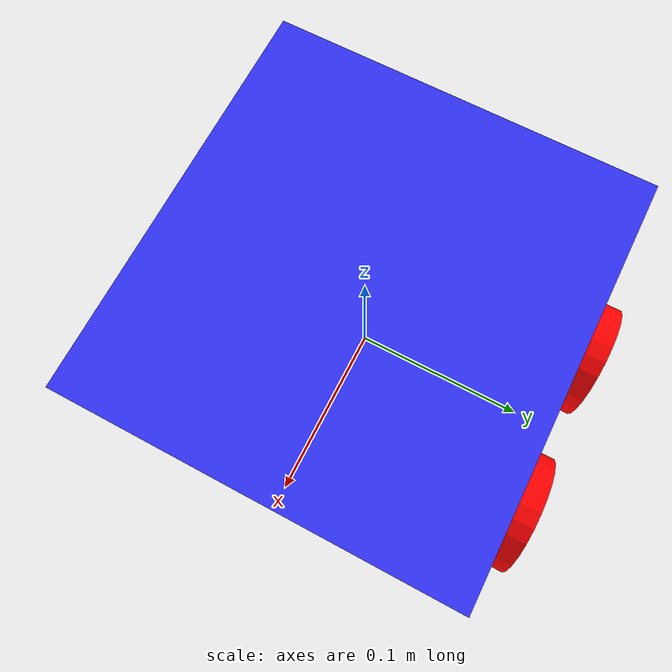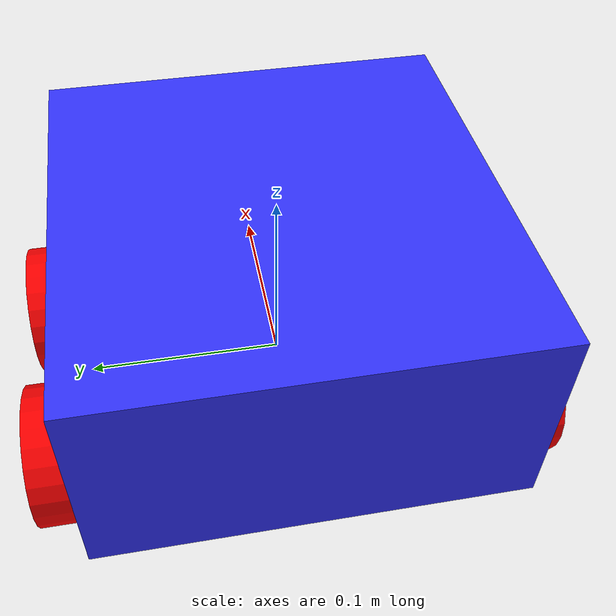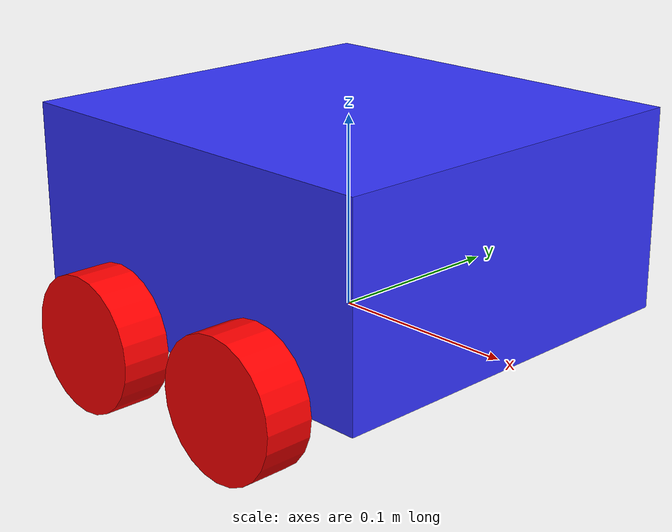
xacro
<?xml version="1.0"?>
<robot xmlns:xacro="http://www.ros.org/wiki/xacro">
<xacro:include filename="inertial_macros.xacro" />

    <material name="white">
        <color rgba="1 1 1 1"/>
    </material>

    <material name="orange">
        <color rgba="1 0.3 0.1 1"/>
    </material>

    <material name="blue">
        <color rgba="0.2 0.2 1 1"/>
    </material>

    <material name="black">
        <color rgba="0 0 0 1"/>
    </material>

    <material name="red">
        <color rgba="1 0 0 1"/>
    </material>

    <material name="purple">
        <color rgba="0.5 0.0 0.5 1.0"/>
    </material>

    <link name="base_link">
    </link>

  <!-- ROBOT FOOTPRINT -->
  <link name="base_footprint"/>

  <joint name="base_joint" type="fixed">
    <parent link="base_link"/>
    <child link="base_footprint"/>
    <origin xyz="0.0 0.0 -0.035" rpy="0 0 0"/>
  </joint>

    <!-- CHASSIS -->
    <joint name="chassis_joint" type="fixed">
        <parent link="base_link"/>
        <child link="chassis"/>
        <origin xyz="0 0 0.0525"/>
    </joint>

    <link name="chassis">
        <visual>
            <origin xyz="0.0 0.0 0.0" rpy="0 0 0"/>
            <geometry>
                <box size="0.220 0.210 0.105"/>
            </geometry>
            <material name="blue"/>
        </visual>
        <collision>
            <origin xyz="0.0 0 0.0" rpy="0 0 0"/>
            <geometry>
                <box size="0.220 0.210 0.105"/>
            </geometry>
        </collision>
        <xacro:inertial_box mass="0.5" x="0.220" y="0.210" z="0.105">
            <origin xyz="0.0 0 0.0" rpy="0 0 0"/>
        </xacro:inertial_box>
    </link>

    <gazebo reference="chassis">
        <material>Gazebo/Blue</material>
    </gazebo>

    <!-- LEFT REAR WHEEL -->
    <joint name="left_rear_wheel_joint" type="continuous">
        <parent link="base_link"/>
        <child link="left_rear_wheel"/>
        <origin xyz="-0.05 0.1175 0.0" rpy="-${pi/2} 0 0"/>
        <axis xyz="0 0 1"/>
    </joint>

    <link name="left_rear_wheel">
        <visual>
            <geometry>
                <cylinder length="0.025" radius="0.035" />
            </geometry>
            <material name="red"/>
        </visual>
        <collision>
            <geometry>
                <sphere radius="0.035" />
            </geometry>
            <material name="red"/>
        </collision>
        <xacro:inertial_sphere mass="0.1" radius="0.035">
            <origin xyz="0 0 0" rpy="0 0 0"/>
        </xacro:inertial_sphere>
    </link>

    <gazebo reference="left_rear_wheel">
        <material>Gazebo/Red</material>
        <mu2 value="0.2"/>
        <mu1 value="0.2"/>
    </gazebo>

    <!-- LEFT FRONT WHEEL -->
    <joint name="left_front_wheel_joint" type="continuous">
        <parent link="base_link"/>
        <child link="left_front_wheel"/>
        <origin xyz="0.05 0.1175 0.0" rpy="-${pi/2} 0 0"/>
        <axis xyz="0 0 1"/>
    </joint>

    <link name="left_front_wheel">
        <visual>
            <geometry>
                <cylinder length="0.025" radius="0.035" />
            </geometry>
            <material name="red"/>
        </visual>
        <collision>
            <geometry>
                <sphere radius="0.035" />
            </geometry>
            <material name="red"/>
        </collision>
        <xacro:inertial_sphere mass="0.1" radius="0.035">
            <origin xyz="0 0 0" rpy="0 0 0"/>
        </xacro:inertial_sphere>
    </link>

    <gazebo reference="left_front_wheel">
        <material>Gazebo/Red</material>
        <mu1 value="0.2"/>
        <mu2 value="0.2"/>
    </gazebo>

    <!-- RIGHT REAR WHEEL -->
    <joint name="right_rear_wheel_joint" type="continuous">
        <parent link="base_link"/>
        <child link="right_rear_wheel"/>
        <origin xyz="-0.05 -0.1175 0.0" rpy="${pi/2} 0 0"/>
        <axis xyz="0 0 -1"/>
    </joint>

    <link name="right_rear_wheel">
        <visual>
            <geometry>
                <cylinder length="0.025" radius="0.035" />
            </geometry>
            <material name="red"/>
        </visual>
        <collision>
            <geometry>
                <sphere radius="0.035" />
            </geometry>
            <material name="red"/>
        </collision>
        <xacro:inertial_sphere mass="0.1" radius="0.035">
            <origin xyz="0 0 0" rpy="0 0 0"/>
        </xacro:inertial_sphere>
    </link>

    <gazebo reference="right_rear_wheel">
        <material>Gazebo/Red</material>
        <mu1 value="0.2"/>
        <mu2 value="0.2"/>
    </gazebo>

    <!-- RIGHT FRONT WHEEL -->
    <joint name="right_front_wheel_joint" type="continuous">
        <parent link="base_link"/>
        <child link="right_front_wheel"/>
        <origin xyz="0.05 -0.1175 0.0" rpy="${pi/2} 0 0"/>
        <axis xyz="0 0 -1"/>
    </joint>

    <link name="right_front_wheel">
        <visual>
            <geometry>
                <cylinder length="0.025" radius="0.035" />
            </geometry>
            <material name="red"/>
        </visual>
        <collision>
            <geometry>
                <sphere radius="0.035" />
            </geometry>
            <material name="red"/>
        </collision>
        <xacro:inertial_sphere mass="0.1" radius="0.035">
            <origin xyz="0 0 0" rpy="0 0 0"/>
        </xacro:inertial_sphere>
    </link>

    <gazebo reference="right_front_wheel">
        <material>Gazebo/Red</material>
        <mu1 value="0.2"/>
        <mu2 value="0.2"/>
    </gazebo>

</robot>
